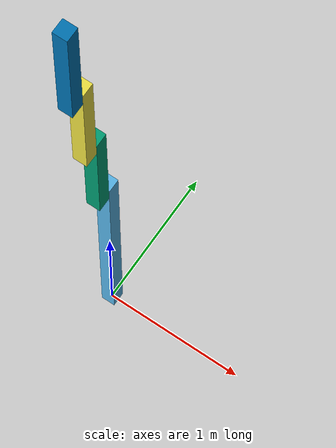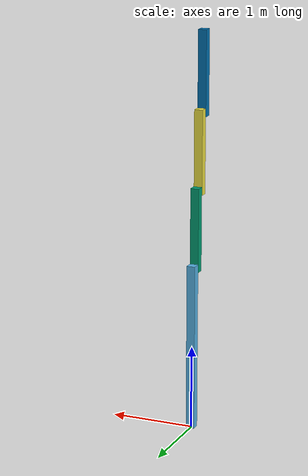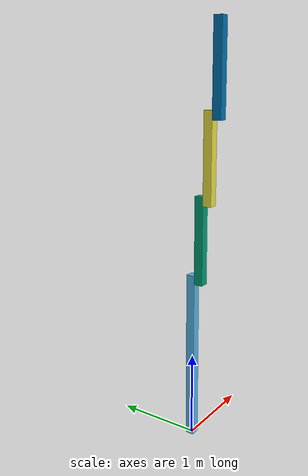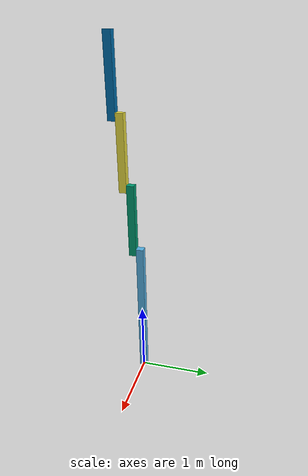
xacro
<?xml version="1.0"?>
<!-- Revolute-Revolute Manipulator -->
<!-- modified (simplified) from https://github.com/ros-simulation/gazebo_ros_demos/blob/master/rrbot_description/urdf/rrbot.xacro-->

<robot name="planar_3rbot" xmlns:xacro="http://www.ros.org/wiki/xacro">

  <!-- Constants for robot dimensions -->
  <xacro:property name="PI" value="3.1415926535897931"/>
  <xacro:property name="mass" value="1" /> <!-- arbitrary value for mass -->
  <xacro:property name="width" value="0.1" /> <!-- Square dimensions (widthxwidth) of beams -->
  <xacro:property name="height1" value="2" /> <!-- Link 1 -->
  <xacro:property name="height2" value="1" /> <!-- Link 2 -->
  <xacro:property name="height3" value="1" /> <!-- Link 3 -->
  <xacro:property name="height4" value="1" /> <!-- Link 4 -->
  <xacro:property name="camera_link" value="0.05" /> <!-- Size of square 'camera' box -->
  <xacro:property name="axel_offset" value="0.05" /> <!-- Space btw top of beam and the each joint -->

  <!-- Used for fixing robot to Gazebo 'base_link' -->
  <link name="world"/>

  <joint name="fixed" type="fixed">
    <parent link="world"/>
    <child link="link1"/>
    <origin xyz="0 0 0" rpy="1.5708 -1.5708 0"/>
  </joint>

  <!-- Base Link -->
  <link name="link1">
    <collision>
      <origin xyz="${height1/2} 0 0" rpy="0 0 0"/>
      <geometry>
	<box size="${height1} ${width}  ${width} "/>
      </geometry>
    </collision>

    <visual>
      <origin xyz="${height1/2} 0  0" rpy="0 0 0"/>
      <geometry>
	<box size="${height1} ${width}  ${width}"/>
      </geometry>
    </visual>

    <inertial>
      <origin xyz="${height1/2} 0  0" rpy="0 0 0"/>
      <mass value="${mass}"/>
      <inertia
	  ixx="${mass / 12.0 * (width*width + width*width)}" ixy="0.0" ixz="0.0"
	  iyy="${mass / 12.0 * (width*width + height1*height1)}" iyz="0.0"
	  izz="${mass / 12.0 * (height1*height1 + width*width)}"/>
    </inertial>
  </link>

  <joint name="joint1" type="continuous">
    <parent link="link1"/>
    <child link="link2"/>
    <origin xyz="${height1 - axel_offset} 0  ${width} " rpy="0 0 0"/>
    <axis xyz="0 0 1"/>
    <dynamics damping="0.7"/>
  </joint>

  <link name="link2">
    <collision>
      <origin xyz="0 ${height2/2 - axel_offset} 0" rpy="0 0 0"/>
      <geometry>
	<box size="${height2} ${width}  ${width} "/>
      </geometry>
    </collision>

    <visual>
      <origin xyz="${height2/2 - axel_offset} 0  0" rpy="0 0 0"/>
      <geometry>
	<box size="${height2} ${width}  ${width}"/>
      </geometry>
    </visual>

    <inertial>
      <origin xyz="${height2/2 - axel_offset} 0  0" rpy="0 0 0"/>
      <mass value="${mass}"/>
      <inertia
	  ixx="${mass / 12.0 * (width*width + width*width)}" ixy="0.0" ixz="0.0"
	  iyy="${mass / 12.0 * (width*width + height2*height2)}" iyz="0.0"
	  izz="${mass / 12.0 * (height2*height2 + width*width)}"/>
    </inertial>
  </link>

  <joint name="joint2" type="continuous">
    <parent link="link2"/>
    <child link="link3"/>
    <origin xyz="${height2 - axel_offset*2} 0 ${width} " rpy="0 0 0"/>
    <axis xyz="0 0 1"/>
    <dynamics damping="0.7"/>
  </joint>

  <link name="link3">
    <collision>
      <origin xyz="${height3/2 - axel_offset} 0 0" rpy="0 0 0"/>
      <geometry>
	<box size="${height3} ${width}  ${width}"/>
      </geometry>
    </collision>

    <visual>
      <origin xyz="${height3/2 - axel_offset} 0  0" rpy="0 0 0"/>
      <geometry>
	<box size="${height3} ${width}  ${width}"/>
      </geometry>
    </visual>

    <inertial>
      <origin xyz="${height3/2 - axel_offset} 0  0" rpy="0 0 0"/>
      <mass value="${mass}"/>
      <inertia
	  ixx="${mass / 12.0 * (width*width + width*width)}" ixy="0.0" ixz="0.0"
	  iyy="${mass / 12.0 * (width*width + height3*height3)}" iyz="0.0"
	  izz="${mass / 12.0 * (height3*height3 + width*width)}"/>
    </inertial>
  </link>

    <joint name="joint3" type="continuous">
    <parent link="link3"/>
    <child link="link4"/>
    <origin xyz="${height3 - axel_offset*2} 0 ${width} " rpy="0 0 0"/>
    <axis xyz="0 0 1"/>
    <dynamics damping="0.7"/>
  </joint>

  <link name="link4">
    <collision>
      <origin xyz="${height4/2 - axel_offset} 0 0" rpy="0 0 0"/>
      <geometry>
	<box size="${height4} ${width}  ${width}"/>
      </geometry>
    </collision>

    <visual>
      <origin xyz="${height4/2 - axel_offset} 0  0" rpy="0 0 0"/>
      <geometry>
	<box size="${height4} ${width}  ${width}"/>
      </geometry>
    </visual>

    <inertial>
      <origin xyz="${height4/2 - axel_offset} 0  0" rpy="0 0 0"/>
      <mass value="${mass}"/>
      <inertia
	  ixx="${mass / 12.0 * (width*width + width*width)}" ixy="0.0" ixz="0.0"
	  iyy="${mass / 12.0 * (width*width + height4*height4)}" iyz="0.0"
	  izz="${mass / 12.0 * (height4*height4 + width*width)}"/>
    </inertial>
  </link>

  <joint name="flange_jnt" type="fixed">
    <parent link="link4"/>
    <child link="flange"/>
    <origin xyz="${height4 - axel_offset} 0  0" rpy="0 0 0"/>
  </joint>

  <link name="flange"/>

  <!--specify motors, transmissions and ros control plug-in -->
  <xacro:include filename="$(find rrbot)/model/planar_3rbot_control.xacro" />

</robot>
